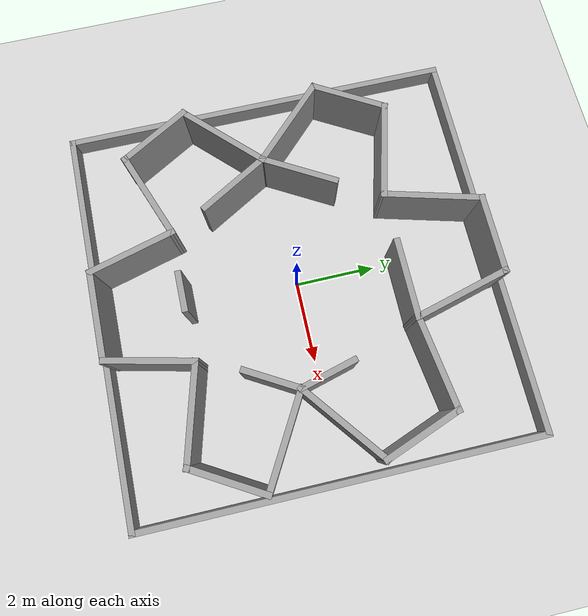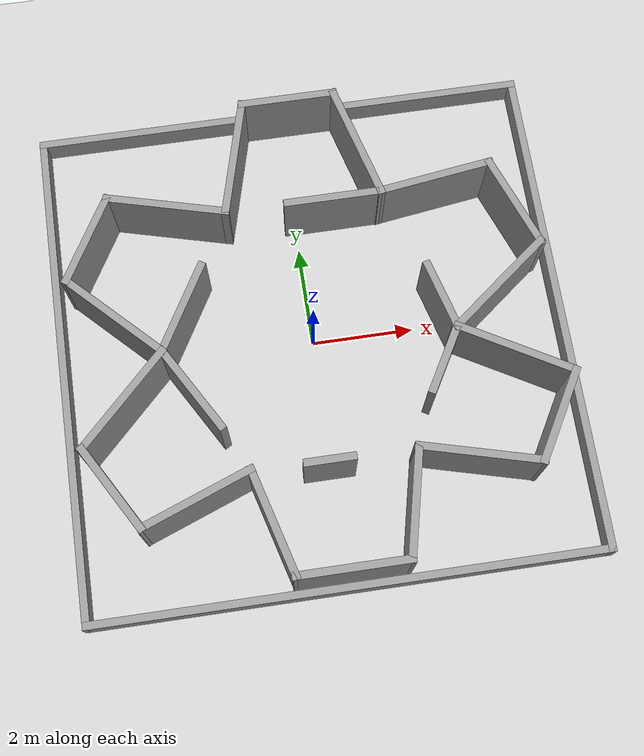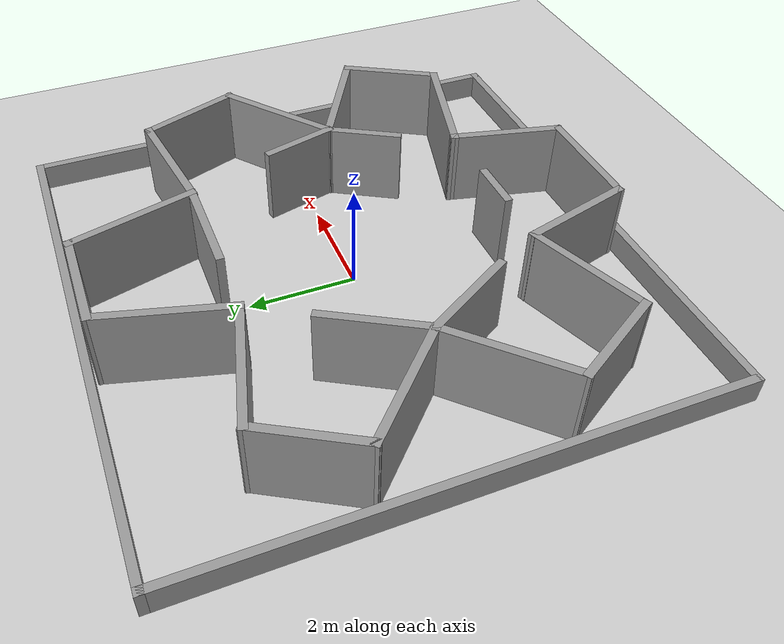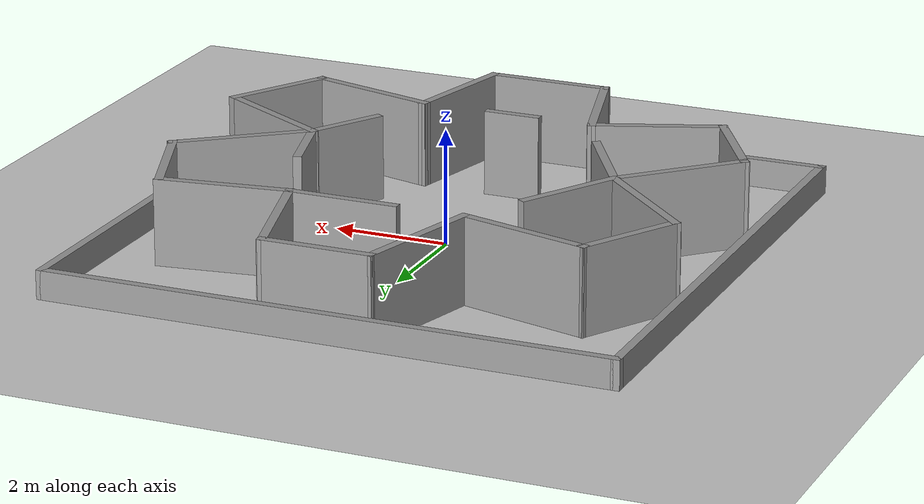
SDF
<sdf version="1.6">
 <world name="default">
  <light name="sun" type="directional">
   <pose>0 0 10 0 -0 0</pose>
   <diffuse>0.8 0.8 0.8 1</diffuse>
   <specular>0.2 0.2 0.2 1</specular>
   <attenuation>
    <range>1000</range>
    <constant>0.9</constant>
    <linear>0.01</linear>
    <quadratic>0.001</quadratic>
   </attenuation>
   <direction>-0.5 0.1 -0.9</direction>
  </light>
  <plugin name="ros_interface_plugin" filename="gazebo_ros_interface_plugin.so"/>
  <plugin name="gazebo_octomap" filename="gazebo_to_octomap_plugin.so"/>
  <model name="ground_plane">
   <static>1</static>
   <link name="link">
    <collision name="collision">
     <geometry><plane><normal>0 0 1</normal><size>100 100</size></plane></geometry>
     <surface>
      <contact><collide_bitmask>65535</collide_bitmask></contact>
      <friction><ode><mu>100</mu><mu2>50</mu2></ode></friction>
     </surface>
    </collision>
    <visual name="visual">
     <cast_shadows>0</cast_shadows>
     <geometry><plane><normal>0 0 1</normal><size>100 100</size></plane></geometry>
     <material>
      <script><uri>file://media/materials/scripts/gazebo.material</uri><name>Gazebo/Grey</name></script>
     </material>
    </visual>
   </link>
  </model>
  <gravity>0 0 -9.8</gravity>
  <magnetic_field>6e-06 2.3e-05 -4.2e-05</magnetic_field>
  <atmosphere type="adiabatic"/>
  <physics name="default_physics" default="0" type="ode">
   <max_step_size>0.001</max_step_size>
   <real_time_factor>1</real_time_factor>
   <real_time_update_rate>1000</real_time_update_rate>
  </physics>
  <scene><ambient>0.4 0.4 0.4 1</ambient><background>0.7 0.7 0.7 1</background><shadows>1</shadows></scene>
  <audio><device>default</device></audio>
  <spherical_coordinates>
   <surface_model>EARTH_WGS84</surface_model>
   <latitude_deg>0</latitude_deg>
   <longitude_deg>0</longitude_deg>
   <elevation>0</elevation>
   <heading_deg>0</heading_deg>
  </spherical_coordinates>
  <model name="room2">
   <link name="Wall_12">
    <collision name="Wall_12_Collision">
     <geometry><box><size>2.45261 0.15 1.5</size></box></geometry>
     <pose>0 0 0.75 0 -0 0</pose>
    </collision>
    <visual name="Wall_12_Visual">
     <pose>0 0 0.75 0 -0 0</pose>
     <geometry><box><size>2.45261 0.15 1.5</size></box></geometry>
     <material>
      <script><uri>file://media/materials/scripts/gazebo.material</uri><name>Gazebo/Grey</name></script>
      <ambient>1 1 1 1</ambient>
     </material>
     <meta><layer>0</layer></meta>
    </visual>
    <pose>2.681 -2.989 0 0 -0 -0.262253</pose>
   </link>
   <link name="Wall_32">
    <collision name="Wall_32_Collision">
     <geometry><box><size>2.5 0.15 1.5</size></box></geometry>
     <pose>0 0 0.75 0 -0 0</pose>
    </collision>
    <visual name="Wall_32_Visual">
     <pose>0 0 0.75 0 -0 0</pose>
     <geometry><box><size>2.5 0.15 1.5</size></box></geometry>
     <material>
      <script><uri>file://media/materials/scripts/gazebo.material</uri><name>Gazebo/Grey</name></script>
      <ambient>1 1 1 1</ambient>
     </material>
     <meta><layer>0</layer></meta>
    </visual>
    <pose>1.3955 3.59 0 0 -0 1.83302</pose>
   </link>
   <link name="Wall_33">
    <collision name="Wall_33_Collision">
     <geometry><box><size>2 0.15 1.5</size></box></geometry>
     <pose>0 0 0.75 0 -0 0</pose>
    </collision>
    <visual name="Wall_33_Visual">
     <pose>0 0 0.75 0 -0 0</pose>
     <geometry><box><size>2 0.15 1.5</size></box></geometry>
     <material>
      <script><uri>file://media/materials/scripts/gazebo.material</uri><name>Gazebo/Grey</name></script>
      <ambient>1 1 1 1</ambient>
     </material>
     <meta><layer>0</layer></meta>
    </visual>
    <pose>0.166 4.7245 0 0 -0 3.14159</pose>
   </link>
   <link name="Wall_34">
    <collision name="Wall_34_Collision">
     <geometry><box><size>2.5 0.15 1.5</size></box></geometry>
     <pose>0 0 0.75 0 -0 0</pose>
    </collision>
    <visual name="Wall_34_Visual">
     <pose>0 0 0.75 0 -0 0</pose>
     <geometry><box><size>2.5 0.15 1.5</size></box></geometry>
     <material>
      <script><uri>file://media/materials/scripts/gazebo.material</uri><name>Gazebo/Grey</name></script>
      <ambient>1 1 1 1</ambient>
     </material>
     <meta><layer>0</layer></meta>
    </visual>
    <pose>-1.063 3.59 0 0 -0 -1.83261</pose>
   </link>
   <link name="Wall_35">
    <collision name="Wall_35_Collision">
     <geometry><box><size>2.5 0.15 1.5</size></box></geometry>
     <pose>0 0 0.75 0 -0 0</pose>
    </collision>
    <visual name="Wall_35_Visual">
     <pose>0 0 0.75 0 -0 0</pose>
     <geometry><box><size>2.5 0.15 1.5</size></box></geometry>
     <material>
      <script><uri>file://media/materials/scripts/gazebo.material</uri><name>Gazebo/Grey</name></script>
      <ambient>1 1 1 1</ambient>
     </material>
     <meta><layer>0</layer></meta>
    </visual>
    <pose>-2.502 2.7595 0 0 -0 2.87989</pose>
   </link>
   <link name="Wall_36">
    <collision name="Wall_36_Collision">
     <geometry><box><size>2 0.15 1.5</size></box></geometry>
     <pose>0 0 0.75 0 -0 0</pose>
    </collision>
    <visual name="Wall_36_Visual">
     <pose>0 0 0.75 0 -0 0</pose>
     <geometry><box><size>2 0.15 1.5</size></box></geometry>
     <material>
      <script><uri>file://media/materials/scripts/gazebo.material</uri><name>Gazebo/Grey</name></script>
      <ambient>1 1 1 1</ambient>
     </material>
     <meta><layer>0</layer></meta>
    </visual>
    <pose>-4.0995 2.2625 0 0 -0 -2.09443</pose>
   </link>
   <link name="Wall_37">
    <collision name="Wall_37_Collision">
     <geometry><box><size>2.50042 0.15 1.5</size></box></geometry>
     <pose>0 0 0.75 0 -0 0</pose>
    </collision>
    <visual name="Wall_37_Visual">
     <pose>0 0 0.75 0 -0 0</pose>
     <geometry><box><size>2.50042 0.15 1.5</size></box></geometry>
     <material>
      <script><uri>file://media/materials/scripts/gazebo.material</uri><name>Gazebo/Grey</name></script>
      <ambient>1 1 1 1</ambient>
     </material>
     <meta><layer>0</layer></meta>
    </visual>
    <pose>-3.731 0.6305 0 0 -0 -0.785398</pose>
   </link>
   <link name="Wall_38">
    <collision name="Wall_38_Collision">
     <geometry><box><size>2.50042 0.15 1.5</size></box></geometry>
     <pose>0 0 0.75 0 -0 0</pose>
    </collision>
    <visual name="Wall_38_Visual">
     <pose>0 0 0.75 0 -0 0</pose>
     <geometry><box><size>2.50042 0.15 1.5</size></box></geometry>
     <material>
      <script><uri>file://media/materials/scripts/gazebo.material</uri><name>Gazebo/Grey</name></script>
      <ambient>1 1 1 1</ambient>
     </material>
     <meta><layer>0</layer></meta>
    </visual>
    <pose>-3.731 -1.0315 0 0 -0 -2.35619</pose>
   </link>
   <link name="Wall_39">
    <collision name="Wall_39_Collision">
     <geometry><box><size>2.00001 0.15 1.5</size></box></geometry>
     <pose>0 0 0.75 0 -0 0</pose>
    </collision>
    <visual name="Wall_39_Visual">
     <pose>0 0 0.75 0 -0 0</pose>
     <geometry><box><size>2.00001 0.15 1.5</size></box></geometry>
     <material>
      <script><uri>file://media/materials/scripts/gazebo.material</uri><name>Gazebo/Grey</name></script>
      <ambient>1 1 1 1</ambient>
     </material>
     <meta><layer>0</layer></meta>
    </visual>
    <pose>-4.0995 -2.6635 0 0 -0 -1.04716</pose>
   </link>
   <link name="Wall_40">
    <collision name="Wall_40_Collision">
     <geometry><box><size>2.38551 0.15 1.5</size></box></geometry>
     <pose>0 0 0.75 0 -0 0</pose>
    </collision>
    <visual name="Wall_40_Visual">
     <pose>0 0 0.75 0 -0 0</pose>
     <geometry><box><size>2.38551 0.15 1.5</size></box></geometry>
     <material>
      <script><uri>file://media/materials/scripts/gazebo.material</uri><name>Gazebo/Grey</name></script>
      <ambient>1 1 1 1</ambient>
     </material>
     <meta><layer>0</layer></meta>
    </visual>
    <pose>-2.5905 -3.072 0 0 -0 0.358823</pose>
   </link>
   <link name="Wall_42">
    <collision name="Wall_42_Collision">
     <geometry><box><size>2 0.15 1.5</size></box></geometry>
     <pose>0 0 0.75 0 -0 0</pose>
    </collision>
    <visual name="Wall_42_Visual">
     <pose>0 0 0.75 0 -0 0</pose>
     <geometry><box><size>2 0.15 1.5</size></box></geometry>
     <material>
      <script><uri>file://media/materials/scripts/gazebo.material</uri><name>Gazebo/Grey</name></script>
      <ambient>1 1 1 1</ambient>
     </material>
     <meta><layer>0</layer></meta>
    </visual>
    <pose>4.2555 -2.4865 0 0 -0 1.04716</pose>
   </link>
   <link name="Wall_43">
    <collision name="Wall_43_Collision">
     <geometry><box><size>2.5 0.15 1.5</size></box></geometry>
     <pose>0 0 0.75 0 -0 0</pose>
    </collision>
    <visual name="Wall_43_Visual">
     <pose>0 0 0.75 0 -0 0</pose>
     <geometry><box><size>2.5 0.15 1.5</size></box></geometry>
     <material>
      <script><uri>file://media/materials/scripts/gazebo.material</uri><name>Gazebo/Grey</name></script>
      <ambient>1 1 1 1</ambient>
     </material>
     <meta><layer>0</layer></meta>
    </visual>
    <pose>3.7005 -1.098 0 0 -0 2.61796</pose>
   </link>
   <link name="Wall_44">
    <collision name="Wall_44_Collision">
     <geometry><box><size>2.55641 0.15 1.5</size></box></geometry>
     <pose>0 0 0.75 0 -0 0</pose>
    </collision>
    <visual name="Wall_44_Visual">
     <pose>0 0 0.75 0 -0 0</pose>
     <geometry><box><size>2.55641 0.15 1.5</size></box></geometry>
     <material>
      <script><uri>file://media/materials/scripts/gazebo.material</uri><name>Gazebo/Grey</name></script>
      <ambient>1 1 1 1</ambient>
     </material>
     <meta><layer>0</layer></meta>
    </visual>
    <pose>3.63206 0.229088 0 0 -0 0.661981</pose>
   </link>
   <link name="Wall_47">
    <collision name="Wall_47_Collision">
     <geometry><box><size>2.38393 0.15 1.5</size></box></geometry>
     <pose>0 0 0.75 0 -0 0</pose>
    </collision>
    <visual name="Wall_47_Visual">
     <pose>0 0 0.75 0 -0 0</pose>
     <geometry><box><size>2.38393 0.15 1.5</size></box></geometry>
     <material>
      <script><uri>file://media/materials/scripts/gazebo.material</uri><name>Gazebo/Grey</name></script>
      <ambient>1 1 1 1</ambient>
     </material>
     <meta><layer>0</layer></meta>
    </visual>
    <pose>2.80656 2.60759 0 0 -0 0.136586</pose>
   </link>
   <link name="Wall_49">
    <collision name="Wall_49_Collision">
     <geometry><box><size>2.06152 0.15 1.5</size></box></geometry>
     <pose>0 0 0.75 0 -0 0</pose>
    </collision>
    <visual name="Wall_49_Visual">
     <pose>0 0 0.75 0 -0 0</pose>
     <geometry><box><size>2.06152 0.15 1.5</size></box></geometry>
     <material>
      <script><uri>file://media/materials/scripts/gazebo.material</uri><name>Gazebo/Grey</name></script>
      <ambient>1 1 1 1</ambient>
     </material>
     <meta><layer>0</layer></meta>
    </visual>
    <pose>4.24712 1.84897 0 0 -0 -1.2138</pose>
   </link>
   <link name="Wall_51">
    <collision name="Wall_51_Collision">
     <geometry><box><size>2 0.15 1.5</size></box></geometry>
     <pose>0 0 0.75 0 -0 0</pose>
    </collision>
    <visual name="Wall_51_Visual">
     <pose>0 0 0.75 0 -0 0</pose>
     <geometry><box><size>2 0.15 1.5</size></box></geometry>
     <material>
      <script><uri>file://media/materials/scripts/gazebo.material</uri><name>Gazebo/Grey</name></script>
      <ambient>1 1 1 1</ambient>
     </material>
     <meta><layer>0</layer></meta>
    </visual>
    <pose>-2.4375 0.6005 0 0 -0 1.04716</pose>
   </link>
   <link name="Wall_54">
    <collision name="Wall_54_Collision">
     <geometry><box><size>2 0.15 1.5</size></box></geometry>
     <pose>0 0 0.75 0 -0 0</pose>
    </collision>
    <visual name="Wall_54_Visual">
     <pose>0 0 0.75 0 -0 0</pose>
     <geometry><box><size>2 0.15 1.5</size></box></geometry>
     <material>
      <script><uri>file://media/materials/scripts/gazebo.material</uri><name>Gazebo/Grey</name></script>
      <ambient>1 1 1 1</ambient>
     </material>
     <meta><layer>0</layer></meta>
    </visual>
    <pose>0.775 2.4555 0 0 -0 3.14159</pose>
   </link>
   <link name="Wall_56">
    <collision name="Wall_56_Collision">
     <geometry><box><size>2 0.15 1.5</size></box></geometry>
     <pose>0 0 0.75 0 -0 0</pose>
    </collision>
    <visual name="Wall_56_Visual">
     <pose>0 0 0.75 0 -0 0</pose>
     <geometry><box><size>2 0.15 1.5</size></box></geometry>
     <material>
      <script><uri>file://media/materials/scripts/gazebo.material</uri><name>Gazebo/Grey</name></script>
      <ambient>1 1 1 1</ambient>
     </material>
     <meta><layer>0</layer></meta>
    </visual>
    <pose>-2.4375 -1.0015 0 0 -0 -1.04716</pose>
   </link>
   <link name="Wall_58">
    <collision name="Wall_58_Collision">
     <geometry><box><size>1.5 0.15 1.5</size></box></geometry>
     <pose>0 0 0.75 0 -0 0</pose>
    </collision>
    <visual name="Wall_58_Visual">
     <pose>0 0 0.75 0 -0 0</pose>
     <geometry><box><size>1.5 0.15 1.5</size></box></geometry>
     <material>
      <script><uri>file://media/materials/scripts/gazebo.material</uri><name>Gazebo/Grey</name></script>
      <ambient>1 1 1 1</ambient>
     </material>
     <meta><layer>0</layer></meta>
    </visual>
    <pose>2.5085 0.1415 0 0 -0 1.83231</pose>
   </link>
   <link name="Wall_60">
    <collision name="Wall_60_Collision">
     <geometry><box><size>1 0.15 1.5</size></box></geometry>
     <pose>0 0 0.75 0 -0 0</pose>
    </collision>
    <visual name="Wall_60_Visual">
     <pose>0 0 0.75 0 -0 0</pose>
     <geometry><box><size>1 0.15 1.5</size></box></geometry>
     <material>
      <script><uri>file://media/materials/scripts/gazebo.material</uri><name>Gazebo/Grey</name></script>
      <ambient>1 1 1 1</ambient>
     </material>
     <meta><layer>0</layer></meta>
    </visual>
    <pose>-0.084 -2.7105 0 0 -0 0</pose>
   </link>
   <link name="Wall_62">
    <collision name="Wall_62_Collision">
     <geometry><box><size>1.5 0.15 1.5</size></box></geometry>
     <pose>0 0 0.75 0 -0 0</pose>
    </collision>
    <visual name="Wall_62_Visual">
     <pose>0 0 0.75 0 -0 0</pose>
     <geometry><box><size>1.5 0.15 1.5</size></box></geometry>
     <material>
      <script><uri>file://media/materials/scripts/gazebo.material</uri><name>Gazebo/Grey</name></script>
      <ambient>1 1 1 1</ambient>
     </material>
     <meta><layer>0</layer></meta>
    </visual>
    <pose>2.3455 -1.095 0 0 -0 -2.09444</pose>
   </link>
   <link name="Wall_67">
    <collision name="Wall_67_Collision">
     <geometry><box><size>10 0.15 0.5</size></box></geometry>
     <pose>0 0 0.25 0 -0 0</pose>
    </collision>
    <visual name="Wall_67_Visual">
     <pose>0 0 0.25 0 -0 0</pose>
     <geometry><box><size>10 0.15 0.5</size></box></geometry>
     <material>
      <script><uri>file://media/materials/scripts/gazebo.material</uri><name>Gazebo/Grey</name></script>
      <ambient>1 1 1 1</ambient>
     </material>
     <meta><layer>0</layer></meta>
    </visual>
    <pose>0 4.925 0 0 -0 -0.000102</pose>
   </link>
   <link name="Wall_83">
    <collision name="Wall_83_Collision">
     <geometry><box><size>2.25 0.15 1.5</size></box></geometry>
     <pose>0 0 0.75 0 -0 0</pose>
    </collision>
    <visual name="Wall_83_Visual">
     <pose>0 0 0.75 0 -0 0</pose>
     <geometry><box><size>2.25 0.15 1.5</size></box></geometry>
     <material>
      <script><uri>file://media/materials/scripts/gazebo.material</uri><name>Gazebo/Grey</name></script>
      <ambient>1 1 1 1</ambient>
     </material>
     <meta><layer>0</layer></meta>
    </visual>
    <pose>-1.272 -3.6935 0 0 -0 -1.30872</pose>
   </link>
   <link name="Wall_85">
    <collision name="Wall_85_Collision">
     <geometry><box><size>2.25 0.15 1.5</size></box></geometry>
     <pose>0 0 0.75 0 -0 0</pose>
    </collision>
    <visual name="Wall_85_Visual">
     <pose>0 0 0.75 0 -0 0</pose>
     <geometry><box><size>2.25 0.15 1.5</size></box></geometry>
     <material>
      <script><uri>file://media/materials/scripts/gazebo.material</uri><name>Gazebo/Grey</name></script>
      <ambient>1 1 1 1</ambient>
     </material>
     <meta><layer>0</layer></meta>
    </visual>
    <pose>0.05 -4.7075 0 0 -0 0</pose>
   </link>
   <link name="Wall_87">
    <collision name="Wall_87_Collision">
     <geometry><box><size>2.22086 0.15 1.5</size></box></geometry>
     <pose>0 0 0.75 0 -0 0</pose>
    </collision>
    <visual name="Wall_87_Visual">
     <pose>0 0 0.75 0 -0 0</pose>
     <geometry><box><size>2.22086 0.15 1.5</size></box></geometry>
     <material>
      <script><uri>file://media/materials/scripts/gazebo.material</uri><name>Gazebo/Grey</name></script>
      <ambient>1 1 1 1</ambient>
     </material>
     <meta><layer>0</layer></meta>
    </visual>
    <pose>1.3345 -3.699 0 0 -0 -1.79926</pose>
   </link>
   <link name="Wall_92">
    <collision name="Wall_92_Collision">
     <geometry><box><size>10 0.15 0.5</size></box></geometry>
     <pose>0 0 0.25 0 -0 0</pose>
    </collision>
    <visual name="Wall_92_Visual">
     <pose>0 0 0.25 0 -0 0</pose>
     <geometry><box><size>10 0.15 0.5</size></box></geometry>
     <material>
      <script><uri>file://media/materials/scripts/gazebo.material</uri><name>Gazebo/Grey</name></script>
      <ambient>1 1 1 1</ambient>
     </material>
     <meta><layer>0</layer></meta>
    </visual>
    <pose>-4.925 0.0005 0 0 -0 -1.5708</pose>
   </link>
   <link name="Wall_94">
    <collision name="Wall_94_Collision">
     <geometry><box><size>10 0.15 0.5</size></box></geometry>
     <pose>0 0 0.25 0 -0 0</pose>
    </collision>
    <visual name="Wall_94_Visual">
     <pose>0 0 0.25 0 -0 0</pose>
     <geometry><box><size>10 0.15 0.5</size></box></geometry>
     <material>
      <script><uri>file://media/materials/scripts/gazebo.material</uri><name>Gazebo/Grey</name></script>
      <ambient>1 1 1 1</ambient>
     </material>
     <meta><layer>0</layer></meta>
    </visual>
    <pose>0 -4.925 0 0 -0 -0.000102</pose>
   </link>
   <link name="Wall_95">
    <collision name="Wall_95_Collision">
     <geometry><box><size>10 0.15 0.5</size></box></geometry>
     <pose>0 0 0.25 0 -0 0</pose>
    </collision>
    <visual name="Wall_95_Visual">
     <pose>0 0 0.25 0 -0 0</pose>
     <geometry><box><size>10 0.15 0.5</size></box></geometry>
     <material>
      <script><uri>file://media/materials/scripts/gazebo.material</uri><name>Gazebo/Grey</name></script>
      <ambient>1 1 1 1</ambient>
     </material>
     <meta><layer>0</layer></meta>
    </visual>
    <pose>4.925 -0.0005 0 0 -0 1.5708</pose>
   </link>
   <static>1</static>
  </model>
 </world>
</sdf>
